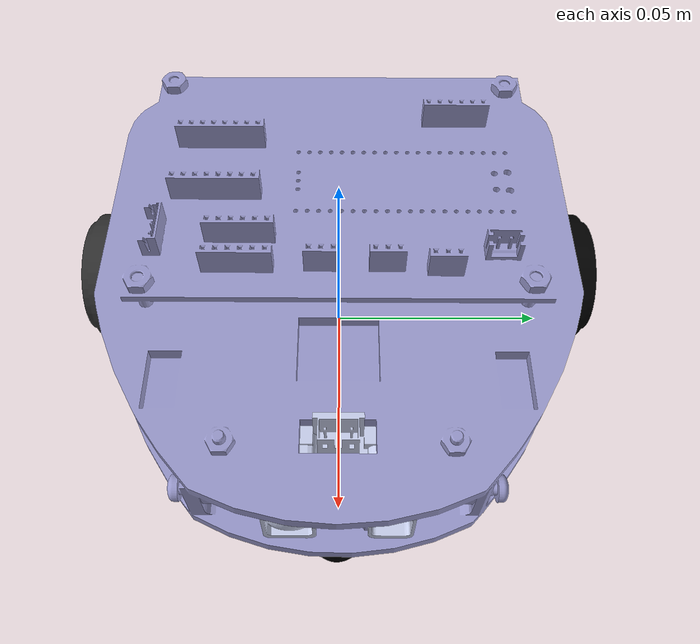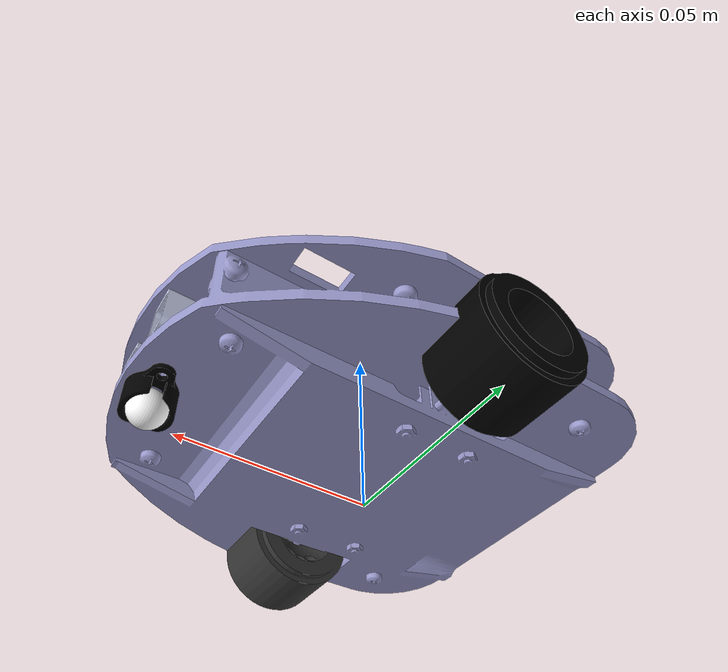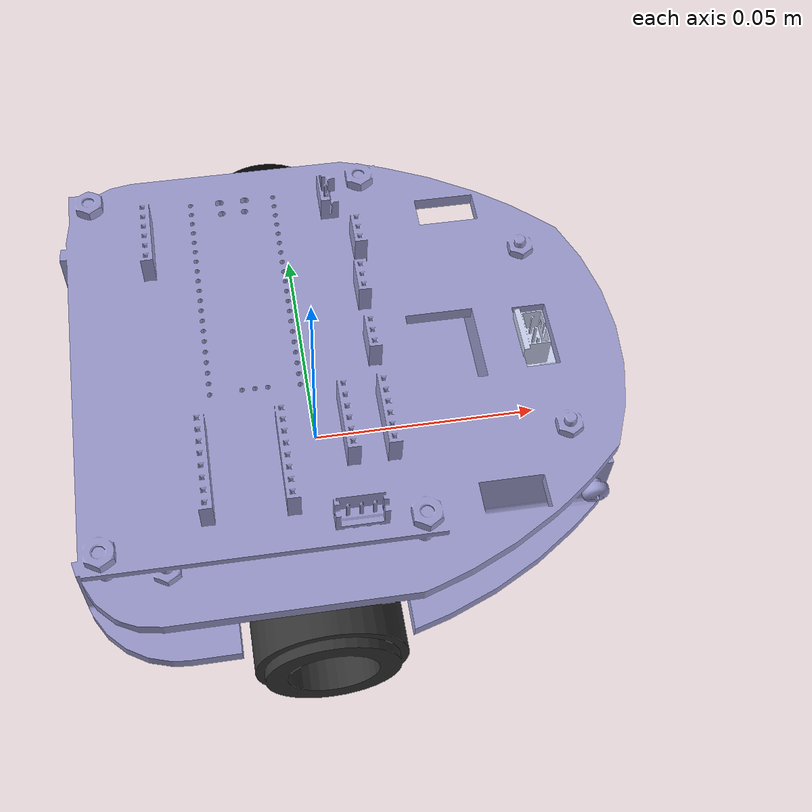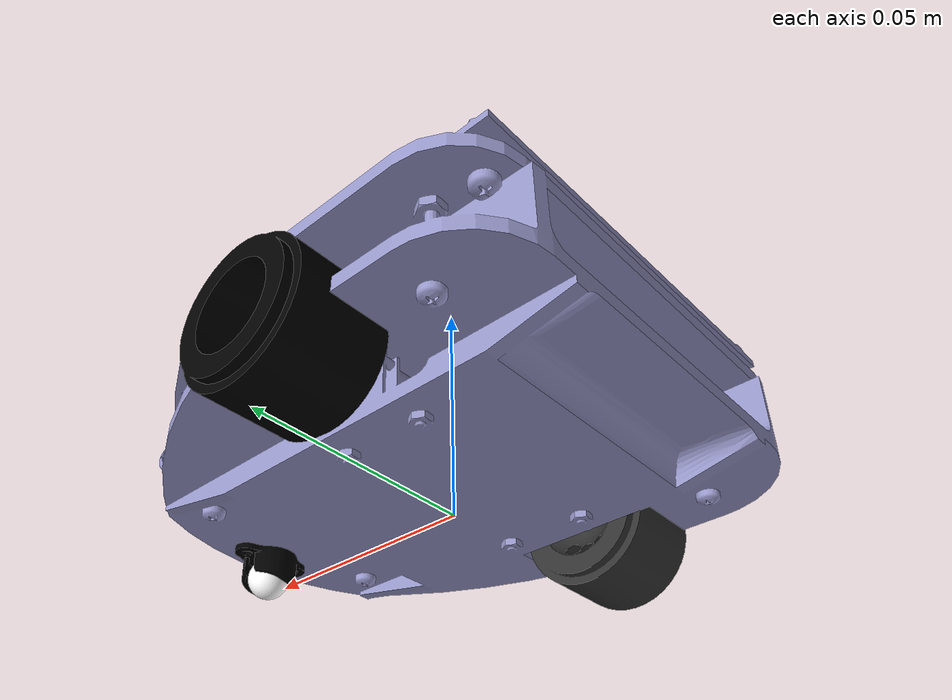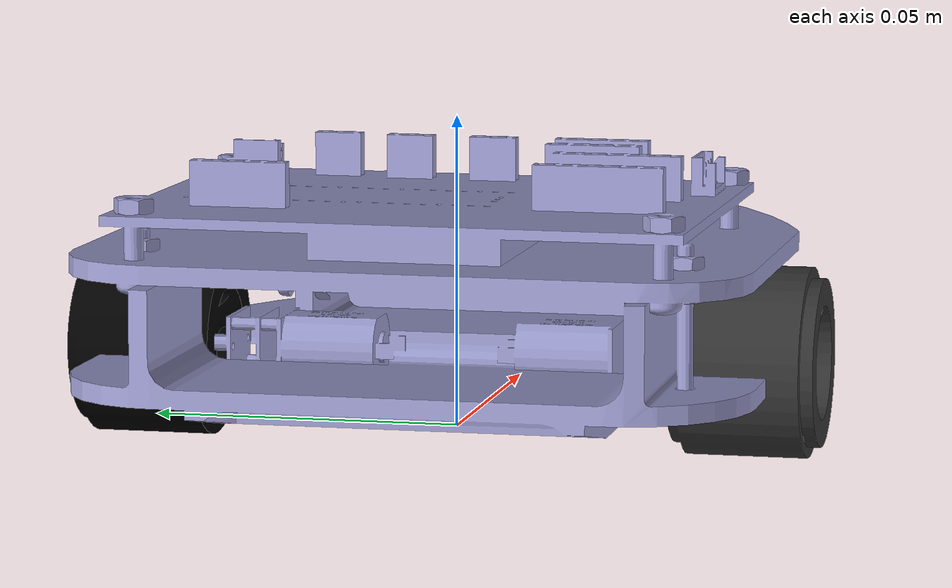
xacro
<?xml version="1.0"?>

<robot name="taurus" xmlns:xacro="http://ros.org/wiki/xacro">

  <!-- Init colour -->
  <material name="black">
      <color rgba="0.0 0.0 0.0 1.0"/>
  </material>

  <material name="dark">
    <color rgba="0.3 0.3 0.3 1.0"/>
  </material>

  <material name="light_black">
    <color rgba="0.4 0.4 0.4 1.0"/>
  </material>

  <material name="blue">
    <color rgba="0.0 0.0 0.8 1.0"/>
  </material>

  <material name="green">
    <color rgba="0.0 0.8 0.0 1.0"/>
  </material>

  <material name="grey">
    <color rgba="0.5 0.5 0.5 1.0"/>
  </material>

  <material name="orange">
    <color rgba="1.0 0.4235 0.0392 1.0"/>
  </material>

  <material name="brown">
    <color rgba="0.8706 0.8118 0.7647 1.0"/>
  </material>

  <material name="red">
    <color rgba="0.8 0.0 0.0 1.0"/>
  </material>

  <material name="white">
    <color rgba="1.0 1.0 1.0 1.0"/>
  </material>

  <link
    name="base_link">
    <inertial>
      <origin
        xyz="0.00293768617847148 -0.000180932444542536 0.0163820289331232"
        rpy="0 0 0" />
      <mass
        value="0.109923704165007" />
      <inertia
        ixx="0.0001"
        ixy="0"
        ixz="0"
        iyy="0.0003"
        iyz="0"
        izz="0.0002" />
    </inertial>
    <visual>
      <origin
        xyz="0 0 0"
        rpy="0 0 0" />
      <geometry>
        <mesh
          filename="package://taurus_description/meshes/base_link.STL" />
      </geometry>
      <material
        name="">
        <color
          rgba="0.6 0.6 0.8 0.94" />
      </material>
    </visual>
    <collision>
      <origin
        xyz="0 0 0"
        rpy="0 0 0" />
      <geometry>
        <mesh
          filename="package://taurus_description/meshes/base_link.STL" />
      </geometry>
    </collision>
  </link>

  <link name="base_footprint"/>

  <joint name="ground_joint" type="fixed">
    <parent link="base_footprint" />
    <child link = "base_link" />
    <origin xyz="0 0 0.005" rpy="0 0 0"/>
  </joint>

  <gazebo reference="base_link">
    <mu1>200</mu1>
    <mu2>200</mu2>
    <kp>1000000</kp>
    <kd>1</kd>
    <material>Gazebo/SkyBlue</material>
  </gazebo>

  <link
    name="rueda_derecha_link">
    <inertial>
      <origin
        xyz="-2.2882E-06 5.0601E-05 0.012107"
        rpy="0 0 0" />
      <mass
        value="0.08" />
      <inertia
        ixx="0.000002"
        ixy="0"
        ixz="0"
        iyy="0.000002"
        iyz="0"
        izz="0.00001" />
    </inertial>
    <visual>
      <origin
        xyz="0 0 0"
        rpy="0 0 0" />
      <geometry>
        <mesh
          filename="package://taurus_description/meshes/rueda_derecha_link.STL" />
      </geometry>
      <material
         name="">
        <color
          rgba="0.2 0.2 0.2 0.96" />
      </material>
    </visual>
    <collision>
      <origin
        xyz="0 0 0"
        rpy="0 0 0" />
      <geometry>
        <cylinder radius="0.015" length="0.016"/>
      </geometry>
    </collision>
  </link>
  <joint
    name="rueda_derecha_joint"
    type="continuous">
    <origin
      xyz="-0.0043003 -0.059687 0.0079472"
      rpy="-1.5708 0 0" />
    <parent
      link="base_link" />
    <child
      link="rueda_derecha_link" />
    <axis
      xyz="0 0 1" />
  </joint>

    <gazebo reference="rueda_derecha_link">
    <mu1>200</mu1>
    <mu2>200</mu2>
    <kp>1000000</kp>
    <kd>1</kd>
    <material>Gazebo/Black</material>
  </gazebo>

  <link
    name="rueda_izquierda_link">
    <inertial>
      <origin
        xyz="-2.0761E-06 -8.4779E-05 0.010976"
        rpy="0 0 0" />
      <mass
        value="0.08" />
      <inertia
        ixx="0.000002"
        ixy="0"
        ixz="0"
        iyy="0.000002"
        iyz="0"
        izz="0.00001" />
    </inertial>
    <visual>
      <origin
        xyz="0 0 0"
        rpy="0 0 0" />
      <geometry>
        <mesh
          filename="package://taurus_description/meshes/rueda_izquierda_link.STL" />
      </geometry>
      <material
         name="">
        <color
          rgba="0 0 0 1" />
      </material>
    </visual>
    <collision>
      <origin
        xyz="0 0 0"
        rpy="0 0 0" />
      <geometry>
        <cylinder radius="0.015" length="0.016"/>
      </geometry>
    </collision>
  </link>
  <joint
    name="rueda_izquierda_joint"
    type="continuous">
    <origin
      xyz="-0.0043291 0.036579 0.0080704"
      rpy="-1.5708 0 0" />
    <parent
      link="base_link" />
    <child
      link="rueda_izquierda_link" />
    <axis
      xyz="0 0 1" />
  </joint>

   <gazebo reference="rueda_izquierda_link">
    <mu1>200</mu1>
    <mu2>200</mu2>
    <kp>1000000</kp>
    <kd>1</kd>
    <material>Gazebo/Black</material>
  </gazebo>

  <link
    name="scan_link">
    <inertial>
      <origin
        xyz="0.010059 -0.00088382 0.000124"
        rpy="0 0 0" />
      <mass
        value="0.0055715" />
      <inertia
        ixx="5.6499E-07"
        ixy="3.6334E-08"
        ixz="3.4462E-09"
        iyy="2.3592E-07"
        iyz="-1.4863E-09"
        izz="6.4738E-07" />
    </inertial>
    <visual>
      <origin
        xyz="0 0 0"
        rpy="0 0 0" />
      <geometry>
        <mesh
          filename="package://taurus_description/meshes/scan_link.STL" />
      </geometry>
      <material
        name="">
        <color
          rgba="0.79216 0.81961 0.93333 1" />
      </material>
    </visual>
    <collision>
      <origin
        xyz="0 0 0"
        rpy="0 0 0" />
      <geometry>
        <mesh
          filename="package://taurus_description/meshes/scan_link.STL" />
      </geometry>
    </collision>
  </link>
  <joint
    name="scan_joint"
    type="fixed">
    <origin
      xyz="0.03982 9.4804E-05 0.016343"
      rpy="0 -0.0208 0" />
    <parent
      link="base_link" />
    <child
      link="scan_link" />
    <axis
      xyz="0 0 0" />
  </joint>
  <link
    name="base_castor_link">
    <inertial>
      <origin
        xyz="-3.3105E-06 -0.00019963 -0.0010622"
        rpy="0 0 0" />
      <mass
        value="0.00033463" />
      <inertia
        ixx="0.00004"
        ixy="0"
        ixz="0"
        iyy="0.00004"
        iyz="0"
        izz="0.00001" />
    </inertial>
    <visual>
      <origin
        xyz="0 0 0"
        rpy="0 0 0" />
      <geometry>
        <mesh
          filename="package://taurus_description/meshes/base_castor_link.STL" />
      </geometry>
      <material
        name="">
        <color
          rgba="0 0 0 1" />
      </material>
    </visual>
    <collision>
      <origin
        xyz="0 0 0"
        rpy="0 0 0" />
      <geometry>
        <mesh
          filename="package://taurus_description/meshes/base_castor_link.STL" />
      </geometry>
    </collision>
  </link>
  <joint
    name="base_castor_joint"
    type="fixed">
    <origin
      xyz="0.056575 0 0.0034302"
      rpy="0 0 0" />
    <parent
      link="base_link" />
    <child
      link="base_castor_link" />
    <axis
      xyz="0 0 0" />
  </joint>

    <gazebo reference="base_castor_link">
    <mu1>0.1</mu1>
    <mu2>0.1</mu2>
    <kp>1000000</kp>
    <kd>1</kd>
  </gazebo>

  <link
    name="caster_ball_link">
    <inertial>
      <origin
        xyz="0 1.3878E-17 0"
        rpy="0 0 0" />
      <mass
        value="0.06" />
      <inertia
        ixx="0.00004"
        ixy="0"
        ixz="0"
        iyy="0.00004"
        iyz="0"
        izz="0.000001" />
    </inertial>
    <visual>
      <origin
        xyz="0 0 0"
        rpy="0 0 0" />
      <geometry>
        <mesh
          filename="package://taurus_description/meshes/caster_ball_link.STL" />
      </geometry>
      <material
        name="">
        <color
          rgba="1 1 1 1" />
      </material>
    </visual>
    <collision>
      <origin
        xyz="0 0 0"
        rpy="0 0 0" />
      <geometry>
        <sphere radius="0.005"/>
      </geometry>
    </collision>
  </link>

  <joint
    name="caster_ball_joint"
    type="fixed">
    <origin
      xyz="-1.325E-05 -3.8318E-05 -0.004121"
      rpy="-1.5708 0 0" />
    <parent
      link="base_castor_link" />
    <child
      link="caster_ball_link" />
    <axis
      xyz="0 0 0" />
    <limit
      lower="0"
      upper="0"
      effort="0"
      velocity="0" />
  </joint>

  <gazebo reference="caster_ball_link">
    <mu1>0.1</mu1>
    <mu2>0.1</mu2>
    <kp>1000000</kp>
    <kd>1</kd>
  </gazebo>

  <link name="imu_link"/>
  <joint
    name="imu_joint"
    type="fixed">
    <origin
      xyz="0.0 0 0.0"
      rpy="0 -0.07 0" />
    <parent
      link="base_link" />
    <child
      link="imu_link" />
  </joint>

  <!--LIDAR CONFIGURATION-->

  <gazebo reference="scan_link">
    <sensor name="lidar" type="ray">

      <always_on>true</always_on>
      <visualize>true</visualize>
      <update_rate>10</update_rate>
      <ray>
        <scan>
          <horizontal>
            <samples>180</samples>
            <resolution>1.000000</resolution>
            <min_angle>-1.57079</min_angle>
            <max_angle>1.57079</max_angle>
          </horizontal>
        </scan>
        <range>
          <min>0.05</min>
          <max>1.0</max>
          <resolution>0.015</resolution>
        </range>
        <noise>
          <type>gaussian</type>
          <mean>0.0</mean>
          <stddev>0.01</stddev>
        </noise>
      </ray>
      <plugin name="scan" filename="libgazebo_ros_ray_sensor.so">
        <ros>
          <remapping>~/out:=scan</remapping>
        </ros>
        <output_type>sensor_msgs/LaserScan</output_type>
        <frame_name>scan_link</frame_name>
      </plugin>
    </sensor>
  </gazebo>

  <gazebo reference="scan_link">
    <mu1>0.1</mu1>
    <mu2>0.1</mu2>
    <kp>100000</kp>
    <kd>1</kd>
    <material>Gazebo/Black</material>
  </gazebo>

  <!--IMU sensor-->

  <gazebo reference="imu_link">
    <gravity>true</gravity>
    <sensor name="imu_sensor" type="imu">
      <always_on>true</always_on>
      <update_rate>100</update_rate>
      <visualize>true</visualize>
      <topic>imu_data</topic>
      <plugin filename="libgazebo_ros_imu_sensor.so" name="imu_plugin">
        <topicName>imu_data</topicName>
        <bodyName>imu_link</bodyName>
        <updateRateHZ>10.0</updateRateHZ>
        <gaussianNoise>0.03</gaussianNoise>
        <xyzOffset>0 0 0</xyzOffset>
        <rpyOffset>0 0 0</rpyOffset>
        <frameName>imu_link</frameName>
        <initialOrientationAsReference>true</initialOrientationAsReference>
      </plugin>
      <pose>0 0 0 0 0 0</pose>
    </sensor>
  </gazebo>

<gazebo>
    <plugin name="two_wheeled_robot_diff_drive" filename="libgazebo_ros_diff_drive.so">

      <update_rate>100</update_rate>

      <!-- wheels -->
      <left_joint>rueda_izquierda_joint</left_joint>
      <right_joint>rueda_derecha_joint</right_joint>

      <!-- kinematics -->
      <wheel_separation>0.07</wheel_separation>
      <wheel_diameter>0.030</wheel_diameter>

      <!-- limits -->
      <max_wheel_torque>20</max_wheel_torque>
      <max_wheel_acceleration>20.0</max_wheel_acceleration>

      <!-- Receive velocity commands on this ROS topic -->
      <command_topic>cmd_vel</command_topic>

      <!-- output -->
      <!-- When false, publish no wheel odometry data to a ROS topic -->
      <publish_odom>true</publish_odom>

      <!-- When true, publish coordinate transform from odom to base_footprint -->
      <!-- I usually use the robot_localization package to publish this transform -->
      <publish_odom_tf>true</publish_odom_tf>

      <!-- When true, publish coordinate transform from base_link to the wheels -->
      <!-- The robot_state_publisher package is often used to publish this transform -->
      <publish_wheel_tf>true</publish_wheel_tf>

      <odometry_topic>odom</odometry_topic>
      <odometry_frame>odom</odometry_frame>
      <robot_base_frame>base_footprint</robot_base_frame>

      <odometry_source>1</odometry_source>
      <ros>
        <remapping>odom:=wheel/odometry</remapping>
      </ros>
    </plugin>
  </gazebo>

</robot>
